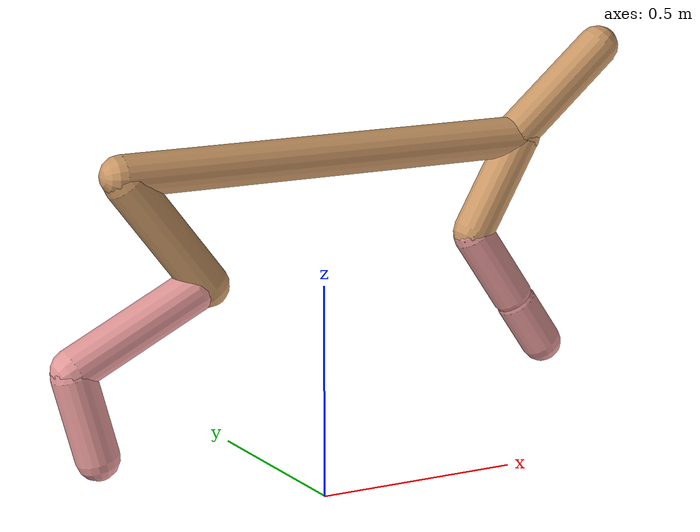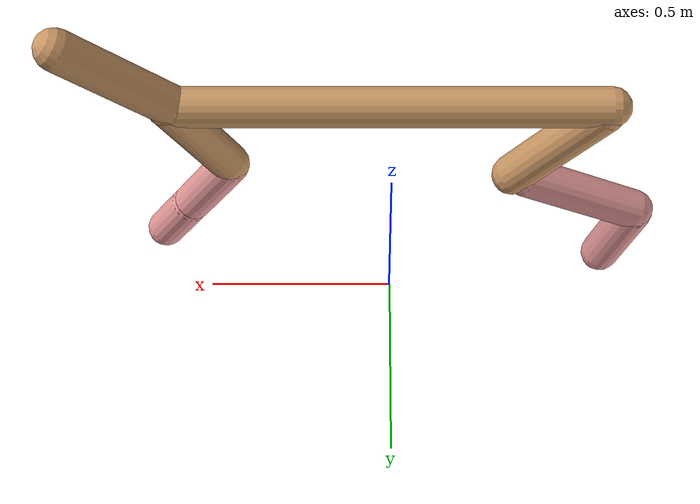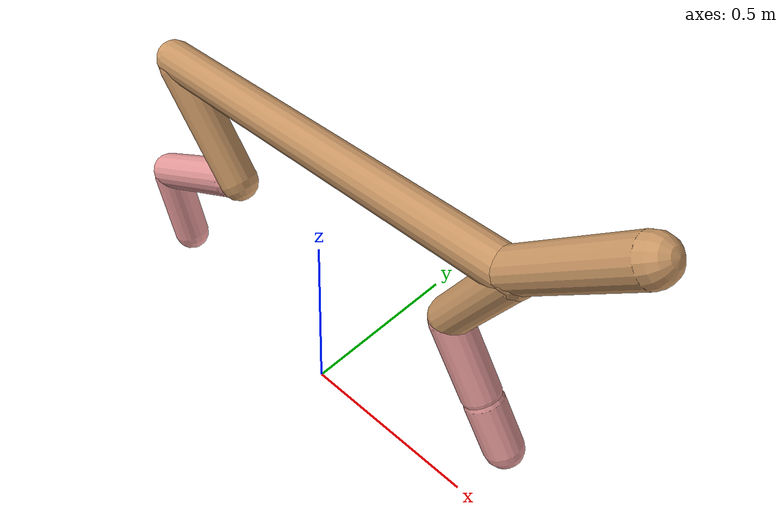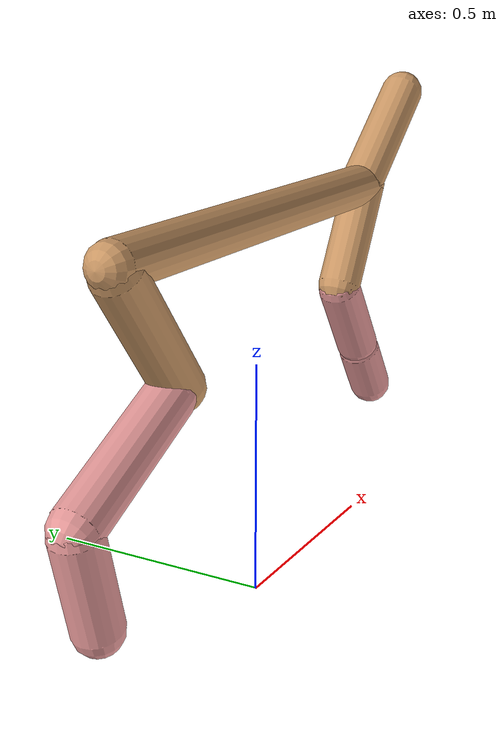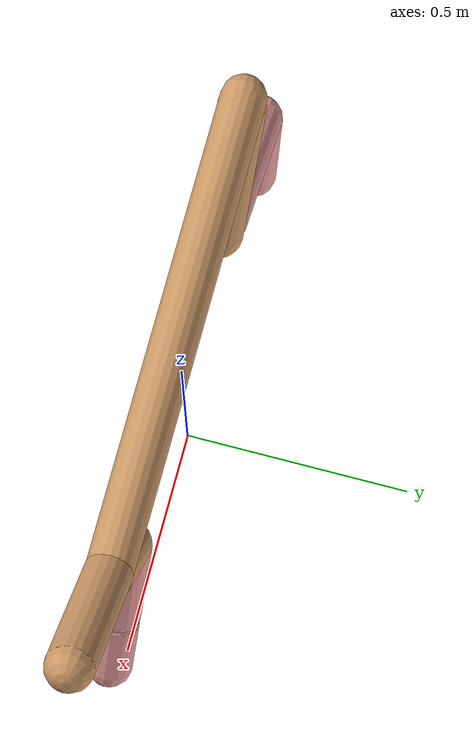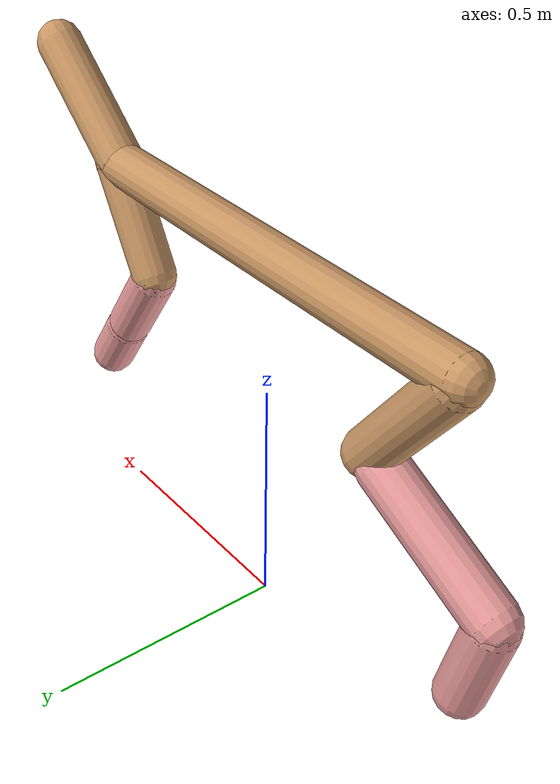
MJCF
<mujoco model="cheetah">
  <compiler angle="radian" coordinate="local" inertiafromgeom="true" settotalmass="14" />
  <default>
    <joint armature=".1" damping=".01" limited="true" solimplimit="0 .8 .03" solreflimit=".02 1" stiffness="8" />
    <geom conaffinity="0" condim="3" contype="1" friction="0.8 .1 .1" rgba="0.8 0.6 .4 1" solimp="0.0 0.8 0.01" solref="0.02 1" />
    <motor ctrllimited="true" ctrlrange="-1 1" />
  </default>
  <size nstack="300000" nuser_geom="1" />
  <option gravity="0 0 -9.81" timestep="0.01" />
  <worldbody>
    <body name="torso" pos="0.0 0.0 0.8019226435245653">
      <joint armature="0" axis="1 0 0" damping="0" limited="false" name="ignorex" pos="0 0 0" stiffness="0" type="slide" />
      <joint armature="0" axis="0 0 1" damping="0" limited="false" name="ignorez" pos="0 0 0" stiffness="0" type="slide" />
      <joint armature="0" axis="0 1 0" damping="0" limited="false" name="ignorey" pos="0 0 0" stiffness="0" type="hinge" />
      <geom fromto="-0.5 0.0 0.0 0.5208343501905213 0.0 0.0" name="torso" size="0.047773377874084734" type="capsule" />
      <geom axisangle="0 1 0 .87" name="head" pos="0.6208343501905212 0.0 0.1" size="0.04872850485452625 0.15" type="capsule" />

      <body name="bthigh" pos="-.5 0 0">
        <joint axis="0 1 0" damping="6" name="bthigh" pos="0 0 0" range="-.52 1.05" stiffness="240" type="hinge" />
        <geom axisangle="0 1 0 -3.8" name="bthigh" pos="0.10763625696357657 0.0 -0.13992713405264953" size="0.05037979145334208 0.15752439263649318" type="capsule" />
        <body name="bshin" pos="0.17527251392715312 0.0 -0.26985426810529906">
          <joint axis="0 1 0" damping="4.5" name="bshin" pos="0 0 0" range="-.785 .785" stiffness="180" type="hinge" />
          <geom axisangle="0 1 0 -2.03" name="bshin" pos="-0.15158843861190208 0.0 -0.07579421930595104" rgba="0.9 0.6 0.6 1" size="0.05037979145334208 0.16295626824464812" type="capsule" />
          <body name="bfoot" pos="-0.30317687722380415 0.0 -0.15158843861190208">
            <joint axis="0 1 0" damping="3" name="bfoot" pos="0 0 0" range="-.4 .785" stiffness="120" type="hinge" />
            <geom axisangle="0 1 0 -.27" name="bfoot" pos="0.03239899592603277 0.0 -0.10475675349417264" rgba="0.9 0.6 0.6 1" size="0.05037979145334208 0.10211926143331283" type="capsule" />
            <inertial mass="10" />
          </body>
        </body>
      </body>
      <body name="fthigh" pos="0.5208343501905213 0.0 0.0">
        <joint axis="0 1 0" damping="4.5" name="fthigh" pos="0 0 0" range="-1.5 0.8" stiffness="180" type="hinge" />
        <geom axisangle="0 1 0 .52" name="fthigh" pos="-0.06445000000423938 0.0 -0.11048571429298178" size="0.04764426202763913 0.12198527655963556" type="capsule" />
        <body name="fshin" pos="-0.12890000000847876 0.0 -0.22097142858596355">
          <joint axis="0 1 0" damping="3" name="fshin" pos="0 0 0" range="-1.2 1.1" stiffness="120" type="hinge" />
          <geom axisangle="0 1 0 -.6" name="fshin" pos="0.05986018231639556 0.0 -0.08288332936116308" rgba="0.9 0.6 0.6 1" size="0.04764426202763913 0.09722134823549901" type="capsule" />
          <body name="ffoot" pos="0.11972036463279112 0.0 -0.16576665872232615">
            <joint axis="0 1 0" damping="1.5" name="ffoot" pos="0 0 0" range="-3.1 -0.3" stiffness="60" type="hinge" />
            <geom axisangle="0 1 0 -.6" name="ffoot" pos="0.04186510772810746 0.0 -0.06512350091038939" rgba="0.9 0.6 0.6 1" size="0.04764426202763913 0.06420277713665029" type="capsule" />
            <inertial mass="10" />
          </body>
        </body>
      </body>
    </body>
  </worldbody>
  <actuator>
    <motor gear="120" joint="bthigh" name="bthigh" />
    <motor gear="90" joint="bshin" name="bshin" />
    <motor gear="60" joint="bfoot" name="bfoot" />
    <motor gear="120" joint="fthigh" name="fthigh" />
    <motor gear="60" joint="fshin" name="fshin" />
    <motor gear="30" joint="ffoot" name="ffoot" />
  </actuator>
</mujoco>
